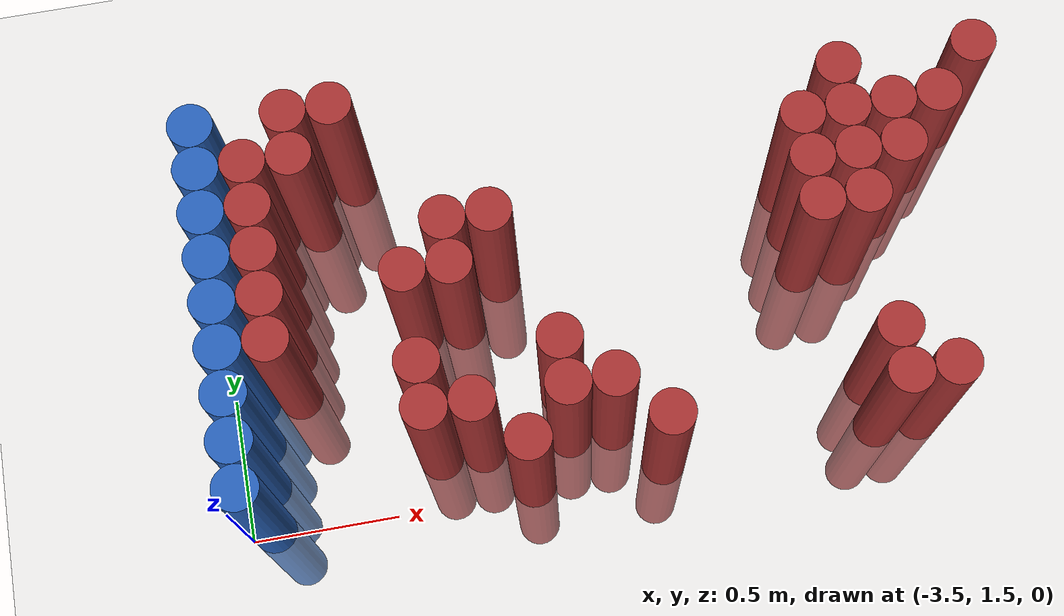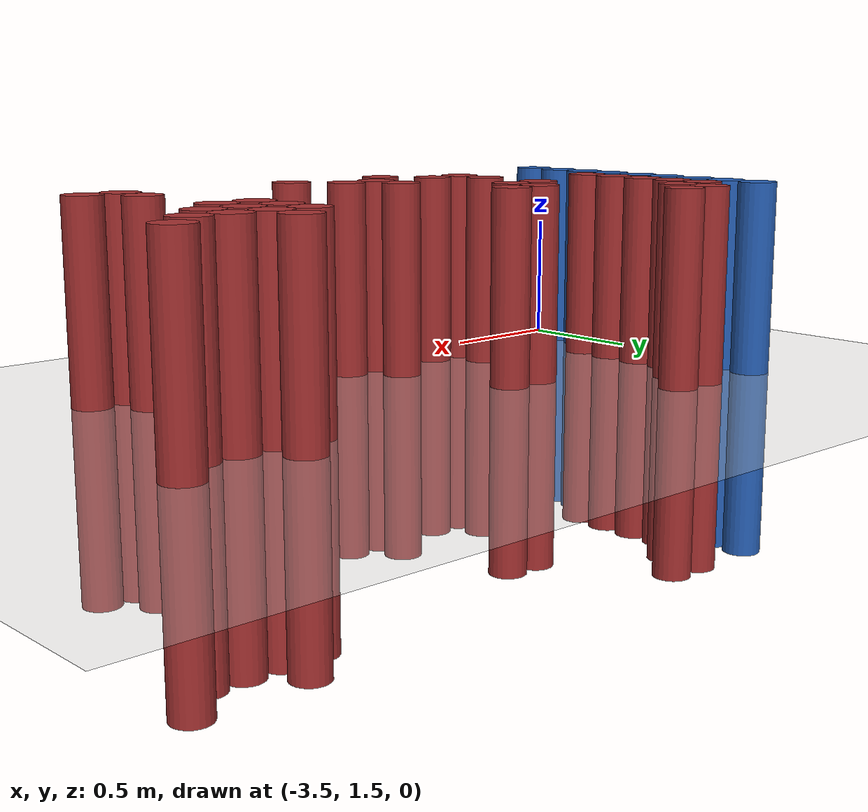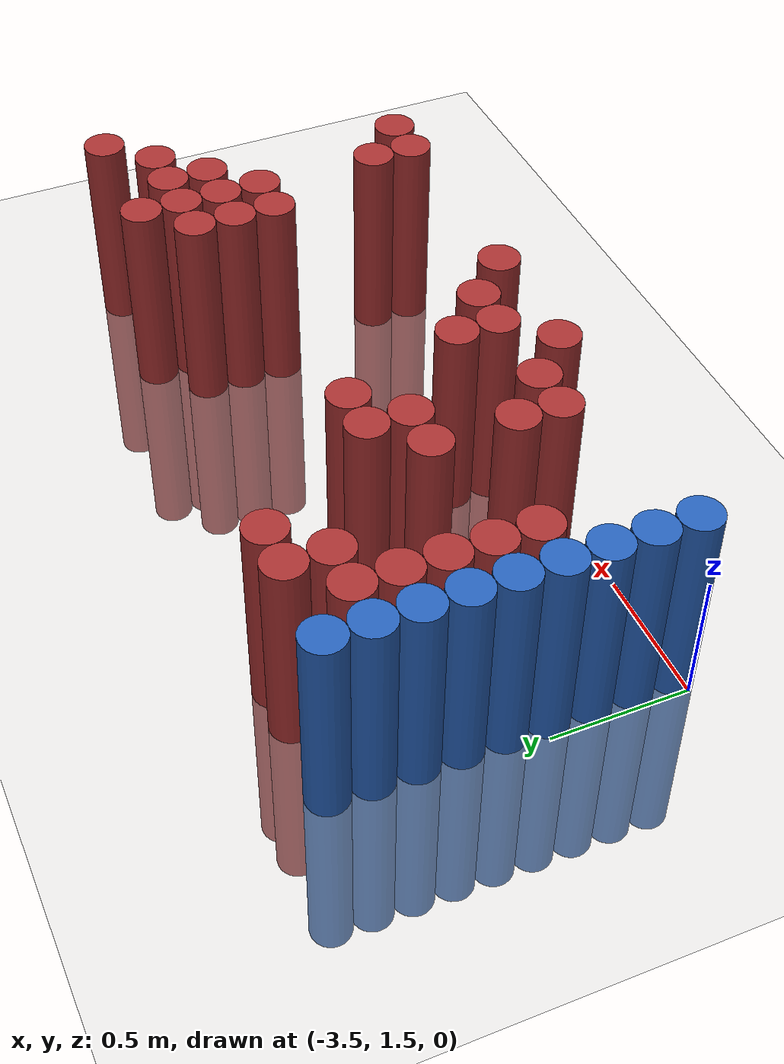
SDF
<sdf version="1.6">
 <world name="default">
  <model name="ground_plane">
   <static>1</static>
   <link name="link">
    <collision name="collision">
     <geometry><plane><normal>0 0 1</normal><size>100 100</size></plane></geometry>
     <surface><friction><ode><mu>100</mu><mu2>50</mu2></ode></friction></surface>
    </collision>
    <visual name="visual">
     <cast_shadows>0</cast_shadows>
     <geometry><plane><normal>0 0 1</normal><size>100 100</size></plane></geometry>
     <material>
      <script><uri>file://media/materials/scripts/gazebo.material</uri><name>Gazebo/Grey</name></script>
     </material>
    </visual>
   </link>
  </model>
  <model name="unit_cylinder_135">
   <static>1</static>
   <pose>-3.425000 1.525000 0.000000 0.000000 0.000000 0.000000</pose>
   <link name="link">
    <inertial>
     <mass>1</mass>
     <inertia><ixx>0.145833</ixx><ixy>0</ixy><ixz>0</ixz><iyy>0.145833</iyy><iyz>0</iyz><izz>0.125</izz></inertia>
    </inertial>
    <collision name="collision">
     <geometry><cylinder><radius>0.075000</radius><length>1.5</length></cylinder></geometry>
    </collision>
    <visual name="visual">
     <geometry><cylinder><radius>0.075000</radius><length>1.5</length></cylinder></geometry>
     <material>
      <ambient>0.152000 0.379000 0.720000 1</ambient>
      <diffuse>0.152000 0.379000 0.720000 1</diffuse>
     </material>
     <material>
      <script><name>Gazebo/Grey</name><uri>file://media/materials/scripts/gazebo.material</uri></script>
     </material>
    </visual>
   </link>
  </model>
  <model name="unit_cylinder_137">
   <static>1</static>
   <pose>-3.425000 1.675000 0.000000 0.000000 0.000000 0.000000</pose>
   <link name="link">
    <inertial>
     <mass>1</mass>
     <inertia><ixx>0.145833</ixx><ixy>0</ixy><ixz>0</ixz><iyy>0.145833</iyy><iyz>0</iyz><izz>0.125</izz></inertia>
    </inertial>
    <collision name="collision">
     <geometry><cylinder><radius>0.075000</radius><length>1.5</length></cylinder></geometry>
    </collision>
    <visual name="visual">
     <geometry><cylinder><radius>0.075000</radius><length>1.5</length></cylinder></geometry>
     <material>
      <ambient>0.152000 0.379000 0.720000 1</ambient>
      <diffuse>0.152000 0.379000 0.720000 1</diffuse>
     </material>
     <material>
      <script><name>Gazebo/Grey</name><uri>file://media/materials/scripts/gazebo.material</uri></script>
     </material>
    </visual>
   </link>
  </model>
  <model name="unit_cylinder_139">
   <static>1</static>
   <pose>-3.425000 1.825000 0.000000 0.000000 0.000000 0.000000</pose>
   <link name="link">
    <inertial>
     <mass>1</mass>
     <inertia><ixx>0.145833</ixx><ixy>0</ixy><ixz>0</ixz><iyy>0.145833</iyy><iyz>0</iyz><izz>0.125</izz></inertia>
    </inertial>
    <collision name="collision">
     <geometry><cylinder><radius>0.075000</radius><length>1.5</length></cylinder></geometry>
    </collision>
    <visual name="visual">
     <geometry><cylinder><radius>0.075000</radius><length>1.5</length></cylinder></geometry>
     <material>
      <ambient>0.152000 0.379000 0.720000 1</ambient>
      <diffuse>0.152000 0.379000 0.720000 1</diffuse>
     </material>
     <material>
      <script><name>Gazebo/Grey</name><uri>file://media/materials/scripts/gazebo.material</uri></script>
     </material>
    </visual>
   </link>
  </model>
  <model name="unit_cylinder_141">
   <static>1</static>
   <pose>-3.425000 1.975000 0.000000 0.000000 0.000000 0.000000</pose>
   <link name="link">
    <inertial>
     <mass>1</mass>
     <inertia><ixx>0.145833</ixx><ixy>0</ixy><ixz>0</ixz><iyy>0.145833</iyy><iyz>0</iyz><izz>0.125</izz></inertia>
    </inertial>
    <collision name="collision">
     <geometry><cylinder><radius>0.075000</radius><length>1.5</length></cylinder></geometry>
    </collision>
    <visual name="visual">
     <geometry><cylinder><radius>0.075000</radius><length>1.5</length></cylinder></geometry>
     <material>
      <ambient>0.152000 0.379000 0.720000 1</ambient>
      <diffuse>0.152000 0.379000 0.720000 1</diffuse>
     </material>
     <material>
      <script><name>Gazebo/Grey</name><uri>file://media/materials/scripts/gazebo.material</uri></script>
     </material>
    </visual>
   </link>
  </model>
  <model name="unit_cylinder_143">
   <static>1</static>
   <pose>-3.425000 2.125000 0.000000 0.000000 0.000000 0.000000</pose>
   <link name="link">
    <inertial>
     <mass>1</mass>
     <inertia><ixx>0.145833</ixx><ixy>0</ixy><ixz>0</ixz><iyy>0.145833</iyy><iyz>0</iyz><izz>0.125</izz></inertia>
    </inertial>
    <collision name="collision">
     <geometry><cylinder><radius>0.075000</radius><length>1.5</length></cylinder></geometry>
    </collision>
    <visual name="visual">
     <geometry><cylinder><radius>0.075000</radius><length>1.5</length></cylinder></geometry>
     <material>
      <ambient>0.152000 0.379000 0.720000 1</ambient>
      <diffuse>0.152000 0.379000 0.720000 1</diffuse>
     </material>
     <material>
      <script><name>Gazebo/Grey</name><uri>file://media/materials/scripts/gazebo.material</uri></script>
     </material>
    </visual>
   </link>
  </model>
  <model name="unit_cylinder_145">
   <static>1</static>
   <pose>-3.425000 2.275000 0.000000 0.000000 0.000000 0.000000</pose>
   <link name="link">
    <inertial>
     <mass>1</mass>
     <inertia><ixx>0.145833</ixx><ixy>0</ixy><ixz>0</ixz><iyy>0.145833</iyy><iyz>0</iyz><izz>0.125</izz></inertia>
    </inertial>
    <collision name="collision">
     <geometry><cylinder><radius>0.075000</radius><length>1.5</length></cylinder></geometry>
    </collision>
    <visual name="visual">
     <geometry><cylinder><radius>0.075000</radius><length>1.5</length></cylinder></geometry>
     <material>
      <ambient>0.152000 0.379000 0.720000 1</ambient>
      <diffuse>0.152000 0.379000 0.720000 1</diffuse>
     </material>
     <material>
      <script><name>Gazebo/Grey</name><uri>file://media/materials/scripts/gazebo.material</uri></script>
     </material>
    </visual>
   </link>
  </model>
  <model name="unit_cylinder_147">
   <static>1</static>
   <pose>-3.425000 2.425000 0.000000 0.000000 0.000000 0.000000</pose>
   <link name="link">
    <inertial>
     <mass>1</mass>
     <inertia><ixx>0.145833</ixx><ixy>0</ixy><ixz>0</ixz><iyy>0.145833</iyy><iyz>0</iyz><izz>0.125</izz></inertia>
    </inertial>
    <collision name="collision">
     <geometry><cylinder><radius>0.075000</radius><length>1.5</length></cylinder></geometry>
    </collision>
    <visual name="visual">
     <geometry><cylinder><radius>0.075000</radius><length>1.5</length></cylinder></geometry>
     <material>
      <ambient>0.152000 0.379000 0.720000 1</ambient>
      <diffuse>0.152000 0.379000 0.720000 1</diffuse>
     </material>
     <material>
      <script><name>Gazebo/Grey</name><uri>file://media/materials/scripts/gazebo.material</uri></script>
     </material>
    </visual>
   </link>
  </model>
  <model name="unit_cylinder_149">
   <static>1</static>
   <pose>-3.425000 2.575000 0.000000 0.000000 0.000000 0.000000</pose>
   <link name="link">
    <inertial>
     <mass>1</mass>
     <inertia><ixx>0.145833</ixx><ixy>0</ixy><ixz>0</ixz><iyy>0.145833</iyy><iyz>0</iyz><izz>0.125</izz></inertia>
    </inertial>
    <collision name="collision">
     <geometry><cylinder><radius>0.075000</radius><length>1.5</length></cylinder></geometry>
    </collision>
    <visual name="visual">
     <geometry><cylinder><radius>0.075000</radius><length>1.5</length></cylinder></geometry>
     <material>
      <ambient>0.152000 0.379000 0.720000 1</ambient>
      <diffuse>0.152000 0.379000 0.720000 1</diffuse>
     </material>
     <material>
      <script><name>Gazebo/Grey</name><uri>file://media/materials/scripts/gazebo.material</uri></script>
     </material>
    </visual>
   </link>
  </model>
  <model name="unit_cylinder_151">
   <static>1</static>
   <pose>-3.425000 2.725000 0.000000 0.000000 0.000000 0.000000</pose>
   <link name="link">
    <inertial>
     <mass>1</mass>
     <inertia><ixx>0.145833</ixx><ixy>0</ixy><ixz>0</ixz><iyy>0.145833</iyy><iyz>0</iyz><izz>0.125</izz></inertia>
    </inertial>
    <collision name="collision">
     <geometry><cylinder><radius>0.075000</radius><length>1.5</length></cylinder></geometry>
    </collision>
    <visual name="visual">
     <geometry><cylinder><radius>0.075000</radius><length>1.5</length></cylinder></geometry>
     <material>
      <ambient>0.152000 0.379000 0.720000 1</ambient>
      <diffuse>0.152000 0.379000 0.720000 1</diffuse>
     </material>
     <material>
      <script><name>Gazebo/Grey</name><uri>file://media/materials/scripts/gazebo.material</uri></script>
     </material>
    </visual>
   </link>
  </model>
  <model name="unit_cylinder_231">
   <static>1</static>
   <pose>-3.425000 1.525000 0.000000 0.000000 0.000000 0.000000</pose>
   <link name="link">
    <inertial>
     <mass>1</mass>
     <inertia><ixx>0.145833</ixx><ixy>0</ixy><ixz>0</ixz><iyy>0.145833</iyy><iyz>0</iyz><izz>0.125</izz></inertia>
    </inertial>
    <collision name="collision">
     <geometry><cylinder><radius>0.075000</radius><length>1.5</length></cylinder></geometry>
    </collision>
    <visual name="visual">
     <geometry><cylinder><radius>0.075000</radius><length>1.5</length></cylinder></geometry>
     <material>
      <ambient>0.152000 0.379000 0.720000 1</ambient>
      <diffuse>0.152000 0.379000 0.720000 1</diffuse>
     </material>
     <material>
      <script><name>Gazebo/Grey</name><uri>file://media/materials/scripts/gazebo.material</uri></script>
     </material>
    </visual>
   </link>
  </model>
  <model name="unit_cylinder_232">
   <static>1</static>
   <pose>-3.425000 1.675000 0.000000 0.000000 0.000000 0.000000</pose>
   <link name="link">
    <inertial>
     <mass>1</mass>
     <inertia><ixx>0.145833</ixx><ixy>0</ixy><ixz>0</ixz><iyy>0.145833</iyy><iyz>0</iyz><izz>0.125</izz></inertia>
    </inertial>
    <collision name="collision">
     <geometry><cylinder><radius>0.075000</radius><length>1.5</length></cylinder></geometry>
    </collision>
    <visual name="visual">
     <geometry><cylinder><radius>0.075000</radius><length>1.5</length></cylinder></geometry>
     <material>
      <ambient>0.152000 0.379000 0.720000 1</ambient>
      <diffuse>0.152000 0.379000 0.720000 1</diffuse>
     </material>
     <material>
      <script><name>Gazebo/Grey</name><uri>file://media/materials/scripts/gazebo.material</uri></script>
     </material>
    </visual>
   </link>
  </model>
  <model name="unit_cylinder_233">
   <static>1</static>
   <pose>-3.425000 1.825000 0.000000 0.000000 0.000000 0.000000</pose>
   <link name="link">
    <inertial>
     <mass>1</mass>
     <inertia><ixx>0.145833</ixx><ixy>0</ixy><ixz>0</ixz><iyy>0.145833</iyy><iyz>0</iyz><izz>0.125</izz></inertia>
    </inertial>
    <collision name="collision">
     <geometry><cylinder><radius>0.075000</radius><length>1.5</length></cylinder></geometry>
    </collision>
    <visual name="visual">
     <geometry><cylinder><radius>0.075000</radius><length>1.5</length></cylinder></geometry>
     <material>
      <ambient>0.152000 0.379000 0.720000 1</ambient>
      <diffuse>0.152000 0.379000 0.720000 1</diffuse>
     </material>
     <material>
      <script><name>Gazebo/Grey</name><uri>file://media/materials/scripts/gazebo.material</uri></script>
     </material>
    </visual>
   </link>
  </model>
  <model name="unit_cylinder_234">
   <static>1</static>
   <pose>-3.425000 1.975000 0.000000 0.000000 0.000000 0.000000</pose>
   <link name="link">
    <inertial>
     <mass>1</mass>
     <inertia><ixx>0.145833</ixx><ixy>0</ixy><ixz>0</ixz><iyy>0.145833</iyy><iyz>0</iyz><izz>0.125</izz></inertia>
    </inertial>
    <collision name="collision">
     <geometry><cylinder><radius>0.075000</radius><length>1.5</length></cylinder></geometry>
    </collision>
    <visual name="visual">
     <geometry><cylinder><radius>0.075000</radius><length>1.5</length></cylinder></geometry>
     <material>
      <ambient>0.152000 0.379000 0.720000 1</ambient>
      <diffuse>0.152000 0.379000 0.720000 1</diffuse>
     </material>
     <material>
      <script><name>Gazebo/Grey</name><uri>file://media/materials/scripts/gazebo.material</uri></script>
     </material>
    </visual>
   </link>
  </model>
  <model name="unit_cylinder_235">
   <static>1</static>
   <pose>-3.425000 2.125000 0.000000 0.000000 0.000000 0.000000</pose>
   <link name="link">
    <inertial>
     <mass>1</mass>
     <inertia><ixx>0.145833</ixx><ixy>0</ixy><ixz>0</ixz><iyy>0.145833</iyy><iyz>0</iyz><izz>0.125</izz></inertia>
    </inertial>
    <collision name="collision">
     <geometry><cylinder><radius>0.075000</radius><length>1.5</length></cylinder></geometry>
    </collision>
    <visual name="visual">
     <geometry><cylinder><radius>0.075000</radius><length>1.5</length></cylinder></geometry>
     <material>
      <ambient>0.152000 0.379000 0.720000 1</ambient>
      <diffuse>0.152000 0.379000 0.720000 1</diffuse>
     </material>
     <material>
      <script><name>Gazebo/Grey</name><uri>file://media/materials/scripts/gazebo.material</uri></script>
     </material>
    </visual>
   </link>
  </model>
  <model name="unit_cylinder_236">
   <static>1</static>
   <pose>-3.425000 2.275000 0.000000 0.000000 0.000000 0.000000</pose>
   <link name="link">
    <inertial>
     <mass>1</mass>
     <inertia><ixx>0.145833</ixx><ixy>0</ixy><ixz>0</ixz><iyy>0.145833</iyy><iyz>0</iyz><izz>0.125</izz></inertia>
    </inertial>
    <collision name="collision">
     <geometry><cylinder><radius>0.075000</radius><length>1.5</length></cylinder></geometry>
    </collision>
    <visual name="visual">
     <geometry><cylinder><radius>0.075000</radius><length>1.5</length></cylinder></geometry>
     <material>
      <ambient>0.152000 0.379000 0.720000 1</ambient>
      <diffuse>0.152000 0.379000 0.720000 1</diffuse>
     </material>
     <material>
      <script><name>Gazebo/Grey</name><uri>file://media/materials/scripts/gazebo.material</uri></script>
     </material>
    </visual>
   </link>
  </model>
  <model name="unit_cylinder_237">
   <static>1</static>
   <pose>-3.425000 2.425000 0.000000 0.000000 0.000000 0.000000</pose>
   <link name="link">
    <inertial>
     <mass>1</mass>
     <inertia><ixx>0.145833</ixx><ixy>0</ixy><ixz>0</ixz><iyy>0.145833</iyy><iyz>0</iyz><izz>0.125</izz></inertia>
    </inertial>
    <collision name="collision">
     <geometry><cylinder><radius>0.075000</radius><length>1.5</length></cylinder></geometry>
    </collision>
    <visual name="visual">
     <geometry><cylinder><radius>0.075000</radius><length>1.5</length></cylinder></geometry>
     <material>
      <ambient>0.152000 0.379000 0.720000 1</ambient>
      <diffuse>0.152000 0.379000 0.720000 1</diffuse>
     </material>
     <material>
      <script><name>Gazebo/Grey</name><uri>file://media/materials/scripts/gazebo.material</uri></script>
     </material>
    </visual>
   </link>
  </model>
  <model name="unit_cylinder_238">
   <static>1</static>
   <pose>-3.425000 2.575000 0.000000 0.000000 0.000000 0.000000</pose>
   <link name="link">
    <inertial>
     <mass>1</mass>
     <inertia><ixx>0.145833</ixx><ixy>0</ixy><ixz>0</ixz><iyy>0.145833</iyy><iyz>0</iyz><izz>0.125</izz></inertia>
    </inertial>
    <collision name="collision">
     <geometry><cylinder><radius>0.075000</radius><length>1.5</length></cylinder></geometry>
    </collision>
    <visual name="visual">
     <geometry><cylinder><radius>0.075000</radius><length>1.5</length></cylinder></geometry>
     <material>
      <ambient>0.152000 0.379000 0.720000 1</ambient>
      <diffuse>0.152000 0.379000 0.720000 1</diffuse>
     </material>
     <material>
      <script><name>Gazebo/Grey</name><uri>file://media/materials/scripts/gazebo.material</uri></script>
     </material>
    </visual>
   </link>
  </model>
  <model name="unit_cylinder_239">
   <static>1</static>
   <pose>-3.425000 2.725000 0.000000 0.000000 0.000000 0.000000</pose>
   <link name="link">
    <inertial>
     <mass>1</mass>
     <inertia><ixx>0.145833</ixx><ixy>0</ixy><ixz>0</ixz><iyy>0.145833</iyy><iyz>0</iyz><izz>0.125</izz></inertia>
    </inertial>
    <collision name="collision">
     <geometry><cylinder><radius>0.075000</radius><length>1.5</length></cylinder></geometry>
    </collision>
    <visual name="visual">
     <geometry><cylinder><radius>0.075000</radius><length>1.5</length></cylinder></geometry>
     <material>
      <ambient>0.152000 0.379000 0.720000 1</ambient>
      <diffuse>0.152000 0.379000 0.720000 1</diffuse>
     </material>
     <material>
      <script><name>Gazebo/Grey</name><uri>file://media/materials/scripts/gazebo.material</uri></script>
     </material>
    </visual>
   </link>
  </model>
  <model name="unit_cylinder_268">
   <static>1</static>
   <pose>-3.275000 1.975000 0.000000 0.000000 0.000000 0.000000</pose>
   <link name="link">
    <inertial>
     <mass>1</mass>
     <inertia><ixx>0.145833</ixx><ixy>0</ixy><ixz>0</ixz><iyy>0.145833</iyy><iyz>0</iyz><izz>0.125</izz></inertia>
    </inertial>
    <collision name="collision">
     <geometry><cylinder><radius>0.075000</radius><length>1.5</length></cylinder></geometry>
    </collision>
    <visual name="visual">
     <geometry><cylinder><radius>0.075000</radius><length>1.5</length></cylinder></geometry>
     <material>
      <ambient>0.648000 0.192000 0.192000 1</ambient>
      <diffuse>0.648000 0.192000 0.192000 1</diffuse>
     </material>
     <material>
      <script><name>Gazebo/Grey</name><uri>file://media/materials/scripts/gazebo.material</uri></script>
     </material>
    </visual>
   </link>
  </model>
  <model name="unit_cylinder_269">
   <static>1</static>
   <pose>-3.275000 2.125000 0.000000 0.000000 0.000000 0.000000</pose>
   <link name="link">
    <inertial>
     <mass>1</mass>
     <inertia><ixx>0.145833</ixx><ixy>0</ixy><ixz>0</ixz><iyy>0.145833</iyy><iyz>0</iyz><izz>0.125</izz></inertia>
    </inertial>
    <collision name="collision">
     <geometry><cylinder><radius>0.075000</radius><length>1.5</length></cylinder></geometry>
    </collision>
    <visual name="visual">
     <geometry><cylinder><radius>0.075000</radius><length>1.5</length></cylinder></geometry>
     <material>
      <ambient>0.648000 0.192000 0.192000 1</ambient>
      <diffuse>0.648000 0.192000 0.192000 1</diffuse>
     </material>
     <material>
      <script><name>Gazebo/Grey</name><uri>file://media/materials/scripts/gazebo.material</uri></script>
     </material>
    </visual>
   </link>
  </model>
  <model name="unit_cylinder_270">
   <static>1</static>
   <pose>-3.275000 2.275000 0.000000 0.000000 0.000000 0.000000</pose>
   <link name="link">
    <inertial>
     <mass>1</mass>
     <inertia><ixx>0.145833</ixx><ixy>0</ixy><ixz>0</ixz><iyy>0.145833</iyy><iyz>0</iyz><izz>0.125</izz></inertia>
    </inertial>
    <collision name="collision">
     <geometry><cylinder><radius>0.075000</radius><length>1.5</length></cylinder></geometry>
    </collision>
    <visual name="visual">
     <geometry><cylinder><radius>0.075000</radius><length>1.5</length></cylinder></geometry>
     <material>
      <ambient>0.648000 0.192000 0.192000 1</ambient>
      <diffuse>0.648000 0.192000 0.192000 1</diffuse>
     </material>
     <material>
      <script><name>Gazebo/Grey</name><uri>file://media/materials/scripts/gazebo.material</uri></script>
     </material>
    </visual>
   </link>
  </model>
  <model name="unit_cylinder_271">
   <static>1</static>
   <pose>-3.275000 2.425000 0.000000 0.000000 0.000000 0.000000</pose>
   <link name="link">
    <inertial>
     <mass>1</mass>
     <inertia><ixx>0.145833</ixx><ixy>0</ixy><ixz>0</ixz><iyy>0.145833</iyy><iyz>0</iyz><izz>0.125</izz></inertia>
    </inertial>
    <collision name="collision">
     <geometry><cylinder><radius>0.075000</radius><length>1.5</length></cylinder></geometry>
    </collision>
    <visual name="visual">
     <geometry><cylinder><radius>0.075000</radius><length>1.5</length></cylinder></geometry>
     <material>
      <ambient>0.648000 0.192000 0.192000 1</ambient>
      <diffuse>0.648000 0.192000 0.192000 1</diffuse>
     </material>
     <material>
      <script><name>Gazebo/Grey</name><uri>file://media/materials/scripts/gazebo.material</uri></script>
     </material>
    </visual>
   </link>
  </model>
  <model name="unit_cylinder_272">
   <static>1</static>
   <pose>-3.275000 2.575000 0.000000 0.000000 0.000000 0.000000</pose>
   <link name="link">
    <inertial>
     <mass>1</mass>
     <inertia><ixx>0.145833</ixx><ixy>0</ixy><ixz>0</ixz><iyy>0.145833</iyy><iyz>0</iyz><izz>0.125</izz></inertia>
    </inertial>
    <collision name="collision">
     <geometry><cylinder><radius>0.075000</radius><length>1.5</length></cylinder></geometry>
    </collision>
    <visual name="visual">
     <geometry><cylinder><radius>0.075000</radius><length>1.5</length></cylinder></geometry>
     <material>
      <ambient>0.648000 0.192000 0.192000 1</ambient>
      <diffuse>0.648000 0.192000 0.192000 1</diffuse>
     </material>
     <material>
      <script><name>Gazebo/Grey</name><uri>file://media/materials/scripts/gazebo.material</uri></script>
     </material>
    </visual>
   </link>
  </model>
  <model name="unit_cylinder_284">
   <static>1</static>
   <pose>-3.125000 2.575000 0.000000 0.000000 0.000000 0.000000</pose>
   <link name="link">
    <inertial>
     <mass>1</mass>
     <inertia><ixx>0.145833</ixx><ixy>0</ixy><ixz>0</ixz><iyy>0.145833</iyy><iyz>0</iyz><izz>0.125</izz></inertia>
    </inertial>
    <collision name="collision">
     <geometry><cylinder><radius>0.075000</radius><length>1.5</length></cylinder></geometry>
    </collision>
    <visual name="visual">
     <geometry><cylinder><radius>0.075000</radius><length>1.5</length></cylinder></geometry>
     <material>
      <ambient>0.648000 0.192000 0.192000 1</ambient>
      <diffuse>0.648000 0.192000 0.192000 1</diffuse>
     </material>
     <material>
      <script><name>Gazebo/Grey</name><uri>file://media/materials/scripts/gazebo.material</uri></script>
     </material>
    </visual>
   </link>
  </model>
  <model name="unit_cylinder_285">
   <static>1</static>
   <pose>-3.125000 2.725000 0.000000 0.000000 0.000000 0.000000</pose>
   <link name="link">
    <inertial>
     <mass>1</mass>
     <inertia><ixx>0.145833</ixx><ixy>0</ixy><ixz>0</ixz><iyy>0.145833</iyy><iyz>0</iyz><izz>0.125</izz></inertia>
    </inertial>
    <collision name="collision">
     <geometry><cylinder><radius>0.075000</radius><length>1.5</length></cylinder></geometry>
    </collision>
    <visual name="visual">
     <geometry><cylinder><radius>0.075000</radius><length>1.5</length></cylinder></geometry>
     <material>
      <ambient>0.648000 0.192000 0.192000 1</ambient>
      <diffuse>0.648000 0.192000 0.192000 1</diffuse>
     </material>
     <material>
      <script><name>Gazebo/Grey</name><uri>file://media/materials/scripts/gazebo.material</uri></script>
     </material>
    </visual>
   </link>
  </model>
  <model name="unit_cylinder_297">
   <static>1</static>
   <pose>-2.975000 2.725000 0.000000 0.000000 0.000000 0.000000</pose>
   <link name="link">
    <inertial>
     <mass>1</mass>
     <inertia><ixx>0.145833</ixx><ixy>0</ixy><ixz>0</ixz><iyy>0.145833</iyy><iyz>0</iyz><izz>0.125</izz></inertia>
    </inertial>
    <collision name="collision">
     <geometry><cylinder><radius>0.075000</radius><length>1.5</length></cylinder></geometry>
    </collision>
    <visual name="visual">
     <geometry><cylinder><radius>0.075000</radius><length>1.5</length></cylinder></geometry>
     <material>
      <ambient>0.648000 0.192000 0.192000 1</ambient>
      <diffuse>0.648000 0.192000 0.192000 1</diffuse>
     </material>
     <material>
      <script><name>Gazebo/Grey</name><uri>file://media/materials/scripts/gazebo.material</uri></script>
     </material>
    </visual>
   </link>
  </model>
  <model name="unit_cylinder_311">
   <static>1</static>
   <pose>-2.825000 1.675000 0.000000 0.000000 0.000000 0.000000</pose>
   <link name="link">
    <inertial>
     <mass>1</mass>
     <inertia><ixx>0.145833</ixx><ixy>0</ixy><ixz>0</ixz><iyy>0.145833</iyy><iyz>0</iyz><izz>0.125</izz></inertia>
    </inertial>
    <collision name="collision">
     <geometry><cylinder><radius>0.075000</radius><length>1.5</length></cylinder></geometry>
    </collision>
    <visual name="visual">
     <geometry><cylinder><radius>0.075000</radius><length>1.5</length></cylinder></geometry>
     <material>
      <ambient>0.648000 0.192000 0.192000 1</ambient>
      <diffuse>0.648000 0.192000 0.192000 1</diffuse>
     </material>
     <material>
      <script><name>Gazebo/Grey</name><uri>file://media/materials/scripts/gazebo.material</uri></script>
     </material>
    </visual>
   </link>
  </model>
  <model name="unit_cylinder_312">
   <static>1</static>
   <pose>-2.825000 1.825000 0.000000 0.000000 0.000000 0.000000</pose>
   <link name="link">
    <inertial>
     <mass>1</mass>
     <inertia><ixx>0.145833</ixx><ixy>0</ixy><ixz>0</ixz><iyy>0.145833</iyy><iyz>0</iyz><izz>0.125</izz></inertia>
    </inertial>
    <collision name="collision">
     <geometry><cylinder><radius>0.075000</radius><length>1.5</length></cylinder></geometry>
    </collision>
    <visual name="visual">
     <geometry><cylinder><radius>0.075000</radius><length>1.5</length></cylinder></geometry>
     <material>
      <ambient>0.648000 0.192000 0.192000 1</ambient>
      <diffuse>0.648000 0.192000 0.192000 1</diffuse>
     </material>
     <material>
      <script><name>Gazebo/Grey</name><uri>file://media/materials/scripts/gazebo.material</uri></script>
     </material>
    </visual>
   </link>
  </model>
  <model name="unit_cylinder_313">
   <static>1</static>
   <pose>-2.825000 2.125000 0.000000 0.000000 0.000000 0.000000</pose>
   <link name="link">
    <inertial>
     <mass>1</mass>
     <inertia><ixx>0.145833</ixx><ixy>0</ixy><ixz>0</ixz><iyy>0.145833</iyy><iyz>0</iyz><izz>0.125</izz></inertia>
    </inertial>
    <collision name="collision">
     <geometry><cylinder><radius>0.075000</radius><length>1.5</length></cylinder></geometry>
    </collision>
    <visual name="visual">
     <geometry><cylinder><radius>0.075000</radius><length>1.5</length></cylinder></geometry>
     <material>
      <ambient>0.648000 0.192000 0.192000 1</ambient>
      <diffuse>0.648000 0.192000 0.192000 1</diffuse>
     </material>
     <material>
      <script><name>Gazebo/Grey</name><uri>file://media/materials/scripts/gazebo.material</uri></script>
     </material>
    </visual>
   </link>
  </model>
  <model name="unit_cylinder_325">
   <static>1</static>
   <pose>-2.675000 1.675000 0.000000 0.000000 0.000000 0.000000</pose>
   <link name="link">
    <inertial>
     <mass>1</mass>
     <inertia><ixx>0.145833</ixx><ixy>0</ixy><ixz>0</ixz><iyy>0.145833</iyy><iyz>0</iyz><izz>0.125</izz></inertia>
    </inertial>
    <collision name="collision">
     <geometry><cylinder><radius>0.075000</radius><length>1.5</length></cylinder></geometry>
    </collision>
    <visual name="visual">
     <geometry><cylinder><radius>0.075000</radius><length>1.5</length></cylinder></geometry>
     <material>
      <ambient>0.648000 0.192000 0.192000 1</ambient>
      <diffuse>0.648000 0.192000 0.192000 1</diffuse>
     </material>
     <material>
      <script><name>Gazebo/Grey</name><uri>file://media/materials/scripts/gazebo.material</uri></script>
     </material>
    </visual>
   </link>
  </model>
  <model name="unit_cylinder_326">
   <static>1</static>
   <pose>-2.675000 2.125000 0.000000 0.000000 0.000000 0.000000</pose>
   <link name="link">
    <inertial>
     <mass>1</mass>
     <inertia><ixx>0.145833</ixx><ixy>0</ixy><ixz>0</ixz><iyy>0.145833</iyy><iyz>0</iyz><izz>0.125</izz></inertia>
    </inertial>
    <collision name="collision">
     <geometry><cylinder><radius>0.075000</radius><length>1.5</length></cylinder></geometry>
    </collision>
    <visual name="visual">
     <geometry><cylinder><radius>0.075000</radius><length>1.5</length></cylinder></geometry>
     <material>
      <ambient>0.648000 0.192000 0.192000 1</ambient>
      <diffuse>0.648000 0.192000 0.192000 1</diffuse>
     </material>
     <material>
      <script><name>Gazebo/Grey</name><uri>file://media/materials/scripts/gazebo.material</uri></script>
     </material>
    </visual>
   </link>
  </model>
  <model name="unit_cylinder_327">
   <static>1</static>
   <pose>-2.675000 2.275000 0.000000 0.000000 0.000000 0.000000</pose>
   <link name="link">
    <inertial>
     <mass>1</mass>
     <inertia><ixx>0.145833</ixx><ixy>0</ixy><ixz>0</ixz><iyy>0.145833</iyy><iyz>0</iyz><izz>0.125</izz></inertia>
    </inertial>
    <collision name="collision">
     <geometry><cylinder><radius>0.075000</radius><length>1.5</length></cylinder></geometry>
    </collision>
    <visual name="visual">
     <geometry><cylinder><radius>0.075000</radius><length>1.5</length></cylinder></geometry>
     <material>
      <ambient>0.648000 0.192000 0.192000 1</ambient>
      <diffuse>0.648000 0.192000 0.192000 1</diffuse>
     </material>
     <material>
      <script><name>Gazebo/Grey</name><uri>file://media/materials/scripts/gazebo.material</uri></script>
     </material>
    </visual>
   </link>
  </model>
  <model name="unit_cylinder_333">
   <static>1</static>
   <pose>-2.525000 1.525000 0.000000 0.000000 0.000000 0.000000</pose>
   <link name="link">
    <inertial>
     <mass>1</mass>
     <inertia><ixx>0.145833</ixx><ixy>0</ixy><ixz>0</ixz><iyy>0.145833</iyy><iyz>0</iyz><izz>0.125</izz></inertia>
    </inertial>
    <collision name="collision">
     <geometry><cylinder><radius>0.075000</radius><length>1.5</length></cylinder></geometry>
    </collision>
    <visual name="visual">
     <geometry><cylinder><radius>0.075000</radius><length>1.5</length></cylinder></geometry>
     <material>
      <ambient>0.648000 0.192000 0.192000 1</ambient>
      <diffuse>0.648000 0.192000 0.192000 1</diffuse>
     </material>
     <material>
      <script><name>Gazebo/Grey</name><uri>file://media/materials/scripts/gazebo.material</uri></script>
     </material>
    </visual>
   </link>
  </model>
  <model name="unit_cylinder_334">
   <static>1</static>
   <pose>-2.525000 2.275000 0.000000 0.000000 0.000000 0.000000</pose>
   <link name="link">
    <inertial>
     <mass>1</mass>
     <inertia><ixx>0.145833</ixx><ixy>0</ixy><ixz>0</ixz><iyy>0.145833</iyy><iyz>0</iyz><izz>0.125</izz></inertia>
    </inertial>
    <collision name="collision">
     <geometry><cylinder><radius>0.075000</radius><length>1.5</length></cylinder></geometry>
    </collision>
    <visual name="visual">
     <geometry><cylinder><radius>0.075000</radius><length>1.5</length></cylinder></geometry>
     <material>
      <ambient>0.648000 0.192000 0.192000 1</ambient>
      <diffuse>0.648000 0.192000 0.192000 1</diffuse>
     </material>
     <material>
      <script><name>Gazebo/Grey</name><uri>file://media/materials/scripts/gazebo.material</uri></script>
     </material>
    </visual>
   </link>
  </model>
  <model name="unit_cylinder_341">
   <static>1</static>
   <pose>-2.375000 1.675000 0.000000 0.000000 0.000000 0.000000</pose>
   <link name="link">
    <inertial>
     <mass>1</mass>
     <inertia><ixx>0.145833</ixx><ixy>0</ixy><ixz>0</ixz><iyy>0.145833</iyy><iyz>0</iyz><izz>0.125</izz></inertia>
    </inertial>
    <collision name="collision">
     <geometry><cylinder><radius>0.075000</radius><length>1.5</length></cylinder></geometry>
    </collision>
    <visual name="visual">
     <geometry><cylinder><radius>0.075000</radius><length>1.5</length></cylinder></geometry>
     <material>
      <ambient>0.648000 0.192000 0.192000 1</ambient>
      <diffuse>0.648000 0.192000 0.192000 1</diffuse>
     </material>
     <material>
      <script><name>Gazebo/Grey</name><uri>file://media/materials/scripts/gazebo.material</uri></script>
     </material>
    </visual>
   </link>
  </model>
  <model name="unit_cylinder_342">
   <static>1</static>
   <pose>-2.375000 1.825000 0.000000 0.000000 0.000000 0.000000</pose>
   <link name="link">
    <inertial>
     <mass>1</mass>
     <inertia><ixx>0.145833</ixx><ixy>0</ixy><ixz>0</ixz><iyy>0.145833</iyy><iyz>0</iyz><izz>0.125</izz></inertia>
    </inertial>
    <collision name="collision">
     <geometry><cylinder><radius>0.075000</radius><length>1.5</length></cylinder></geometry>
    </collision>
    <visual name="visual">
     <geometry><cylinder><radius>0.075000</radius><length>1.5</length></cylinder></geometry>
     <material>
      <ambient>0.648000 0.192000 0.192000 1</ambient>
      <diffuse>0.648000 0.192000 0.192000 1</diffuse>
     </material>
     <material>
      <script><name>Gazebo/Grey</name><uri>file://media/materials/scripts/gazebo.material</uri></script>
     </material>
    </visual>
   </link>
  </model>
  <model name="unit_cylinder_355">
   <static>1</static>
   <pose>-2.225000 1.675000 0.000000 0.000000 0.000000 0.000000</pose>
   <link name="link">
    <inertial>
     <mass>1</mass>
     <inertia><ixx>0.145833</ixx><ixy>0</ixy><ixz>0</ixz><iyy>0.145833</iyy><iyz>0</iyz><izz>0.125</izz></inertia>
    </inertial>
    <collision name="collision">
     <geometry><cylinder><radius>0.075000</radius><length>1.5</length></cylinder></geometry>
    </collision>
    <visual name="visual">
     <geometry><cylinder><radius>0.075000</radius><length>1.5</length></cylinder></geometry>
     <material>
      <ambient>0.648000 0.192000 0.192000 1</ambient>
      <diffuse>0.648000 0.192000 0.192000 1</diffuse>
     </material>
     <material>
      <script><name>Gazebo/Grey</name><uri>file://media/materials/scripts/gazebo.material</uri></script>
     </material>
    </visual>
   </link>
  </model>
  <model name="unit_cylinder_367">
   <static>1</static>
   <pose>-2.075000 1.525000 0.000000 0.000000 0.000000 0.000000</pose>
   <link name="link">
    <inertial>
     <mass>1</mass>
     <inertia><ixx>0.145833</ixx><ixy>0</ixy><ixz>0</ixz><iyy>0.145833</iyy><iyz>0</iyz><izz>0.125</izz></inertia>
    </inertial>
    <collision name="collision">
     <geometry><cylinder><radius>0.075000</radius><length>1.5</length></cylinder></geometry>
    </collision>
    <visual name="visual">
     <geometry><cylinder><radius>0.075000</radius><length>1.5</length></cylinder></geometry>
     <material>
      <ambient>0.648000 0.192000 0.192000 1</ambient>
      <diffuse>0.648000 0.192000 0.192000 1</diffuse>
     </material>
     <material>
      <script><name>Gazebo/Grey</name><uri>file://media/materials/scripts/gazebo.material</uri></script>
     </material>
    </visual>
   </link>
  </model>
  <model name="unit_cylinder_408">
   <static>1</static>
   <pose>-1.475000 2.125000 0.000000 0.000000 0.000000 0.000000</pose>
   <link name="link">
    <inertial>
     <mass>1</mass>
     <inertia><ixx>0.145833</ixx><ixy>0</ixy><ixz>0</ixz><iyy>0.145833</iyy><iyz>0</iyz><izz>0.125</izz></inertia>
    </inertial>
    <collision name="collision">
     <geometry><cylinder><radius>0.075000</radius><length>1.5</length></cylinder></geometry>
    </collision>
    <visual name="visual">
     <geometry><cylinder><radius>0.075000</radius><length>1.5</length></cylinder></geometry>
     <material>
      <ambient>0.648000 0.192000 0.192000 1</ambient>
      <diffuse>0.648000 0.192000 0.192000 1</diffuse>
     </material>
     <material>
      <script><name>Gazebo/Grey</name><uri>file://media/materials/scripts/gazebo.material</uri></script>
     </material>
    </visual>
   </link>
  </model>
  <model name="unit_cylinder_409">
   <static>1</static>
   <pose>-1.475000 2.275000 0.000000 0.000000 0.000000 0.000000</pose>
   <link name="link">
    <inertial>
     <mass>1</mass>
     <inertia><ixx>0.145833</ixx><ixy>0</ixy><ixz>0</ixz><iyy>0.145833</iyy><iyz>0</iyz><izz>0.125</izz></inertia>
    </inertial>
    <collision name="collision">
     <geometry><cylinder><radius>0.075000</radius><length>1.5</length></cylinder></geometry>
    </collision>
    <visual name="visual">
     <geometry><cylinder><radius>0.075000</radius><length>1.5</length></cylinder></geometry>
     <material>
      <ambient>0.648000 0.192000 0.192000 1</ambient>
      <diffuse>0.648000 0.192000 0.192000 1</diffuse>
     </material>
     <material>
      <script><name>Gazebo/Grey</name><uri>file://media/materials/scripts/gazebo.material</uri></script>
     </material>
    </visual>
   </link>
  </model>
  <model name="unit_cylinder_410">
   <static>1</static>
   <pose>-1.475000 2.425000 0.000000 0.000000 0.000000 0.000000</pose>
   <link name="link">
    <inertial>
     <mass>1</mass>
     <inertia><ixx>0.145833</ixx><ixy>0</ixy><ixz>0</ixz><iyy>0.145833</iyy><iyz>0</iyz><izz>0.125</izz></inertia>
    </inertial>
    <collision name="collision">
     <geometry><cylinder><radius>0.075000</radius><length>1.5</length></cylinder></geometry>
    </collision>
    <visual name="visual">
     <geometry><cylinder><radius>0.075000</radius><length>1.5</length></cylinder></geometry>
     <material>
      <ambient>0.648000 0.192000 0.192000 1</ambient>
      <diffuse>0.648000 0.192000 0.192000 1</diffuse>
     </material>
     <material>
      <script><name>Gazebo/Grey</name><uri>file://media/materials/scripts/gazebo.material</uri></script>
     </material>
    </visual>
   </link>
  </model>
  <model name="unit_cylinder_423">
   <static>1</static>
   <pose>-1.325000 1.525000 0.000000 0.000000 0.000000 0.000000</pose>
   <link name="link">
    <inertial>
     <mass>1</mass>
     <inertia><ixx>0.145833</ixx><ixy>0</ixy><ixz>0</ixz><iyy>0.145833</iyy><iyz>0</iyz><izz>0.125</izz></inertia>
    </inertial>
    <collision name="collision">
     <geometry><cylinder><radius>0.075000</radius><length>1.5</length></cylinder></geometry>
    </collision>
    <visual name="visual">
     <geometry><cylinder><radius>0.075000</radius><length>1.5</length></cylinder></geometry>
     <material>
      <ambient>0.648000 0.192000 0.192000 1</ambient>
      <diffuse>0.648000 0.192000 0.192000 1</diffuse>
     </material>
     <material>
      <script><name>Gazebo/Grey</name><uri>file://media/materials/scripts/gazebo.material</uri></script>
     </material>
    </visual>
   </link>
  </model>
  <model name="unit_cylinder_424">
   <static>1</static>
   <pose>-1.325000 1.675000 0.000000 0.000000 0.000000 0.000000</pose>
   <link name="link">
    <inertial>
     <mass>1</mass>
     <inertia><ixx>0.145833</ixx><ixy>0</ixy><ixz>0</ixz><iyy>0.145833</iyy><iyz>0</iyz><izz>0.125</izz></inertia>
    </inertial>
    <collision name="collision">
     <geometry><cylinder><radius>0.075000</radius><length>1.5</length></cylinder></geometry>
    </collision>
    <visual name="visual">
     <geometry><cylinder><radius>0.075000</radius><length>1.5</length></cylinder></geometry>
     <material>
      <ambient>0.648000 0.192000 0.192000 1</ambient>
      <diffuse>0.648000 0.192000 0.192000 1</diffuse>
     </material>
     <material>
      <script><name>Gazebo/Grey</name><uri>file://media/materials/scripts/gazebo.material</uri></script>
     </material>
    </visual>
   </link>
  </model>
  <model name="unit_cylinder_425">
   <static>1</static>
   <pose>-1.325000 2.125000 0.000000 0.000000 0.000000 0.000000</pose>
   <link name="link">
    <inertial>
     <mass>1</mass>
     <inertia><ixx>0.145833</ixx><ixy>0</ixy><ixz>0</ixz><iyy>0.145833</iyy><iyz>0</iyz><izz>0.125</izz></inertia>
    </inertial>
    <collision name="collision">
     <geometry><cylinder><radius>0.075000</radius><length>1.5</length></cylinder></geometry>
    </collision>
    <visual name="visual">
     <geometry><cylinder><radius>0.075000</radius><length>1.5</length></cylinder></geometry>
     <material>
      <ambient>0.648000 0.192000 0.192000 1</ambient>
      <diffuse>0.648000 0.192000 0.192000 1</diffuse>
     </material>
     <material>
      <script><name>Gazebo/Grey</name><uri>file://media/materials/scripts/gazebo.material</uri></script>
     </material>
    </visual>
   </link>
  </model>
  <model name="unit_cylinder_426">
   <static>1</static>
   <pose>-1.325000 2.275000 0.000000 0.000000 0.000000 0.000000</pose>
   <link name="link">
    <inertial>
     <mass>1</mass>
     <inertia><ixx>0.145833</ixx><ixy>0</ixy><ixz>0</ixz><iyy>0.145833</iyy><iyz>0</iyz><izz>0.125</izz></inertia>
    </inertial>
    <collision name="collision">
     <geometry><cylinder><radius>0.075000</radius><length>1.5</length></cylinder></geometry>
    </collision>
    <visual name="visual">
     <geometry><cylinder><radius>0.075000</radius><length>1.5</length></cylinder></geometry>
     <material>
      <ambient>0.648000 0.192000 0.192000 1</ambient>
      <diffuse>0.648000 0.192000 0.192000 1</diffuse>
     </material>
     <material>
      <script><name>Gazebo/Grey</name><uri>file://media/materials/scripts/gazebo.material</uri></script>
     </material>
    </visual>
   </link>
  </model>
  <model name="unit_cylinder_427">
   <static>1</static>
   <pose>-1.325000 2.425000 0.000000 0.000000 0.000000 0.000000</pose>
   <link name="link">
    <inertial>
     <mass>1</mass>
     <inertia><ixx>0.145833</ixx><ixy>0</ixy><ixz>0</ixz><iyy>0.145833</iyy><iyz>0</iyz><izz>0.125</izz></inertia>
    </inertial>
    <collision name="collision">
     <geometry><cylinder><radius>0.075000</radius><length>1.5</length></cylinder></geometry>
    </collision>
    <visual name="visual">
     <geometry><cylinder><radius>0.075000</radius><length>1.5</length></cylinder></geometry>
     <material>
      <ambient>0.648000 0.192000 0.192000 1</ambient>
      <diffuse>0.648000 0.192000 0.192000 1</diffuse>
     </material>
     <material>
      <script><name>Gazebo/Grey</name><uri>file://media/materials/scripts/gazebo.material</uri></script>
     </material>
    </visual>
   </link>
  </model>
  <model name="unit_cylinder_428">
   <static>1</static>
   <pose>-1.325000 2.575000 0.000000 0.000000 0.000000 0.000000</pose>
   <link name="link">
    <inertial>
     <mass>1</mass>
     <inertia><ixx>0.145833</ixx><ixy>0</ixy><ixz>0</ixz><iyy>0.145833</iyy><iyz>0</iyz><izz>0.125</izz></inertia>
    </inertial>
    <collision name="collision">
     <geometry><cylinder><radius>0.075000</radius><length>1.5</length></cylinder></geometry>
    </collision>
    <visual name="visual">
     <geometry><cylinder><radius>0.075000</radius><length>1.5</length></cylinder></geometry>
     <material>
      <ambient>0.648000 0.192000 0.192000 1</ambient>
      <diffuse>0.648000 0.192000 0.192000 1</diffuse>
     </material>
     <material>
      <script><name>Gazebo/Grey</name><uri>file://media/materials/scripts/gazebo.material</uri></script>
     </material>
    </visual>
   </link>
  </model>
  <model name="unit_cylinder_434">
   <static>1</static>
   <pose>-1.175000 1.525000 0.000000 0.000000 0.000000 0.000000</pose>
   <link name="link">
    <inertial>
     <mass>1</mass>
     <inertia><ixx>0.145833</ixx><ixy>0</ixy><ixz>0</ixz><iyy>0.145833</iyy><iyz>0</iyz><izz>0.125</izz></inertia>
    </inertial>
    <collision name="collision">
     <geometry><cylinder><radius>0.075000</radius><length>1.5</length></cylinder></geometry>
    </collision>
    <visual name="visual">
     <geometry><cylinder><radius>0.075000</radius><length>1.5</length></cylinder></geometry>
     <material>
      <ambient>0.648000 0.192000 0.192000 1</ambient>
      <diffuse>0.648000 0.192000 0.192000 1</diffuse>
     </material>
     <material>
      <script><name>Gazebo/Grey</name><uri>file://media/materials/scripts/gazebo.material</uri></script>
     </material>
    </visual>
   </link>
  </model>
  <model name="unit_cylinder_435">
   <static>1</static>
   <pose>-1.175000 2.275000 0.000000 0.000000 0.000000 0.000000</pose>
   <link name="link">
    <inertial>
     <mass>1</mass>
     <inertia><ixx>0.145833</ixx><ixy>0</ixy><ixz>0</ixz><iyy>0.145833</iyy><iyz>0</iyz><izz>0.125</izz></inertia>
    </inertial>
    <collision name="collision">
     <geometry><cylinder><radius>0.075000</radius><length>1.5</length></cylinder></geometry>
    </collision>
    <visual name="visual">
     <geometry><cylinder><radius>0.075000</radius><length>1.5</length></cylinder></geometry>
     <material>
      <ambient>0.648000 0.192000 0.192000 1</ambient>
      <diffuse>0.648000 0.192000 0.192000 1</diffuse>
     </material>
     <material>
      <script><name>Gazebo/Grey</name><uri>file://media/materials/scripts/gazebo.material</uri></script>
     </material>
    </visual>
   </link>
  </model>
  <model name="unit_cylinder_436">
   <static>1</static>
   <pose>-1.175000 2.425000 0.000000 0.000000 0.000000 0.000000</pose>
   <link name="link">
    <inertial>
     <mass>1</mass>
     <inertia><ixx>0.145833</ixx><ixy>0</ixy><ixz>0</ixz><iyy>0.145833</iyy><iyz>0</iyz><izz>0.125</izz></inertia>
    </inertial>
    <collision name="collision">
     <geometry><cylinder><radius>0.075000</radius><length>1.5</length></cylinder></geometry>
    </collision>
    <visual name="visual">
     <geometry><cylinder><radius>0.075000</radius><length>1.5</length></cylinder></geometry>
     <material>
      <ambient>0.648000 0.192000 0.192000 1</ambient>
      <diffuse>0.648000 0.192000 0.192000 1</diffuse>
     </material>
     <material>
      <script><name>Gazebo/Grey</name><uri>file://media/materials/scripts/gazebo.material</uri></script>
     </material>
    </visual>
   </link>
  </model>
  <model name="unit_cylinder_440">
   <static>1</static>
   <pose>-1.025000 2.425000 0.000000 0.000000 0.000000 0.000000</pose>
   <link name="link">
    <inertial>
     <mass>1</mass>
     <inertia><ixx>0.145833</ixx><ixy>0</ixy><ixz>0</ixz><iyy>0.145833</iyy><iyz>0</iyz><izz>0.125</izz></inertia>
    </inertial>
    <collision name="collision">
     <geometry><cylinder><radius>0.075000</radius><length>1.5</length></cylinder></geometry>
    </collision>
    <visual name="visual">
     <geometry><cylinder><radius>0.075000</radius><length>1.5</length></cylinder></geometry>
     <material>
      <ambient>0.648000 0.192000 0.192000 1</ambient>
      <diffuse>0.648000 0.192000 0.192000 1</diffuse>
     </material>
     <material>
      <script><name>Gazebo/Grey</name><uri>file://media/materials/scripts/gazebo.material</uri></script>
     </material>
    </visual>
   </link>
  </model>
  <model name="unit_cylinder_442">
   <static>1</static>
   <pose>-0.875000 2.575000 0.000000 0.000000 0.000000 0.000000</pose>
   <link name="link">
    <inertial>
     <mass>1</mass>
     <inertia><ixx>0.145833</ixx><ixy>0</ixy><ixz>0</ixz><iyy>0.145833</iyy><iyz>0</iyz><izz>0.125</izz></inertia>
    </inertial>
    <collision name="collision">
     <geometry><cylinder><radius>0.075000</radius><length>1.5</length></cylinder></geometry>
    </collision>
    <visual name="visual">
     <geometry><cylinder><radius>0.075000</radius><length>1.5</length></cylinder></geometry>
     <material>
      <ambient>0.648000 0.192000 0.192000 1</ambient>
      <diffuse>0.648000 0.192000 0.192000 1</diffuse>
     </material>
     <material>
      <script><name>Gazebo/Grey</name><uri>file://media/materials/scripts/gazebo.material</uri></script>
     </material>
    </visual>
   </link>
  </model>
 </world>
</sdf>
